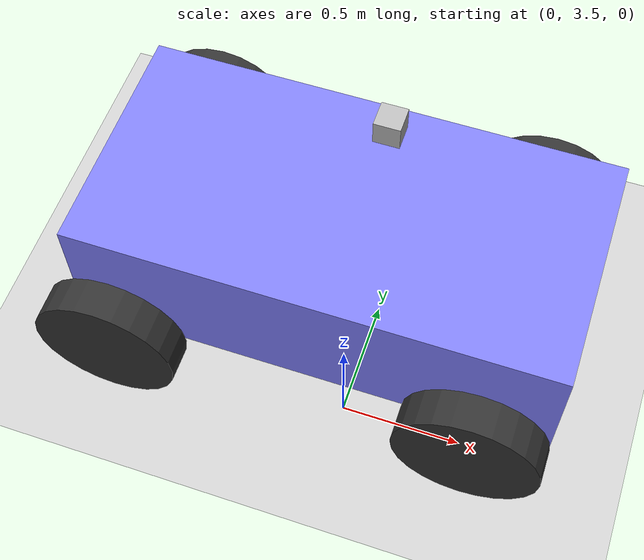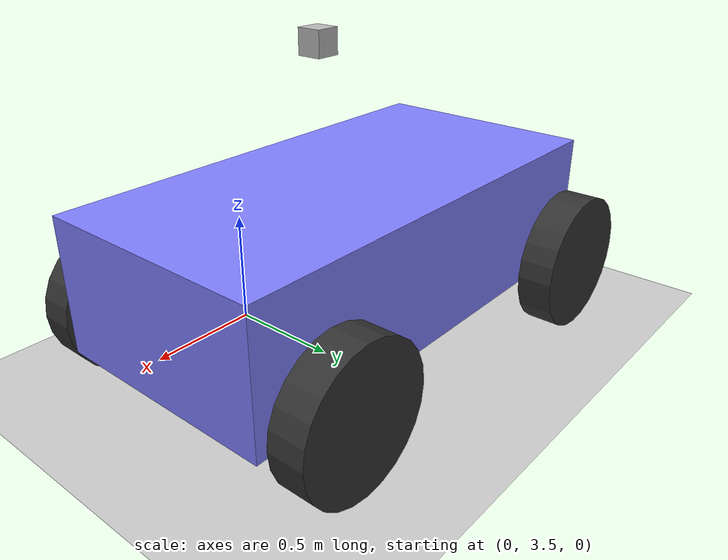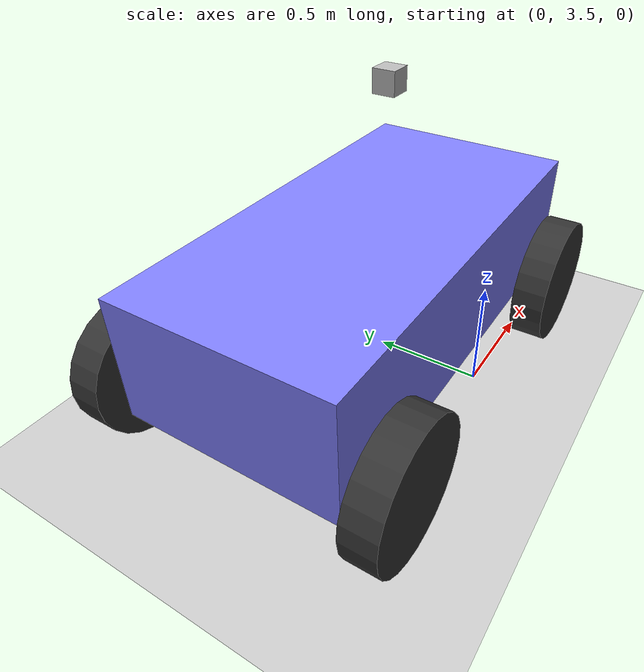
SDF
<sdf version="1.6">
 <world name="ackermann_steering">
  <physics name="1ms" type="ignored">
   <max_step_size>0.001</max_step_size>
   <real_time_factor>1.0</real_time_factor>
  </physics>
  <plugin filename="ignition-gazebo-physics-system" name="gz::sim::systems::Physics"/>
  <plugin filename="ignition-gazebo-user-commands-system" name="gz::sim::systems::UserCommands"/>
  <plugin filename="ignition-gazebo-scene-broadcaster-system" name="gz::sim::systems::SceneBroadcaster"/>
  <plugin filename="ignition-gazebo-sensors-system" name="gz::sim::systems::Sensors">
   <render_engine>ogre</render_engine>
  </plugin>
  <scene><ambient>1.0 1.0 1.0</ambient><background>0.8 0.8 0.8</background></scene>
  <light type="point" name="sun">
   <pose>0 0 5 0 0 0</pose>
   <diffuse>0.7 0.7 0.7 1</diffuse>
   <specular>0.7 0.7 0.7 1</specular>
   <attenuation>
    <range>10000</range>
    <constant>0.1</constant>
    <linear>00</linear>
    <quadratic>0.0</quadratic>
   </attenuation>
   <direction>-0.5 0.1 -0.9</direction>
  </light>
  <model name="ground_plane">
   <static>true</static>
   <link name="link">
    <collision name="collision">
     <geometry><plane><normal>0 0 1</normal><size>100 100</size></plane></geometry>
     <surface><friction><ode><mu>50</mu></ode></friction></surface>
    </collision>
    <visual name="visual">
     <geometry><plane><normal>0 0 1</normal><size>100 100</size></plane></geometry>
     <material>
      <ambient>0.8 0.8 0.8 1</ambient>
      <diffuse>0.8 0.8 0.8 1</diffuse>
      <specular>0.8 0.8 0.8 1</specular>
     </material>
    </visual>
   </link>
  </model>
  <model name="vehicle_blue">
   <pose>0 4 0.325 0 -0 0</pose>
   <link name="chassis">
    <pose>-0.151427 -0 0.175 0 -0 0</pose>
    <inertial>
     <mass>1.14395</mass>
     <inertia>
      <ixx>0.126164</ixx>
      <ixy>0</ixy>
      <ixz>0</ixz>
      <iyy>0.416519</iyy>
      <iyz>0</iyz>
      <izz>0.481014</izz>
     </inertia>
    </inertial>
    <visual name="visual">
     <geometry><box><size>2.01142 1 0.568726</size></box></geometry>
     <material>
      <ambient>0.5 0.5 1.0 1</ambient>
      <diffuse>0.5 0.5 1.0 1</diffuse>
      <specular>0.0 0.0 1.0 1</specular>
     </material>
    </visual>
    <collision name="collision"><geometry><box><size>2.01142 1 0.568726</size></box></geometry></collision>
   </link>
   <link name="camera">
    <pose>0 0 1 0 0 -1.57</pose>
    <inertial>
     <mass>0.1</mass>
     <inertia><ixx>0.000166667</ixx><iyy>0.000166667</iyy><izz>0.000166667</izz></inertia>
    </inertial>
    <collision name="collision"><geometry><box><size>0.1 0.1 0.1</size></box></geometry></collision>
    <visual name="visual"><geometry><box><size>0.1 0.1 0.1</size></box></geometry></visual>
    <sensor name="camera" type="camera">
     <camera>
      <horizontal_fov>1.047</horizontal_fov>
      <image><width>1920</width><height>1080</height><format>R8G8B8</format></image>
      <clip><near>0.1</near><far>100</far></clip>
     </camera>
     <always_on>1</always_on>
     <update_rate>10</update_rate>
     <visualize>true</visualize>
     <topic>camera</topic>
    </sensor>
   </link>
   <joint name="camera_joint" type="fixed"><parent>chassis</parent><child>camera</child></joint>
   <link name="front_left_wheel">
    <pose>0.554283 0.625029 -0.025 -1.5707 0 0</pose>
    <inertial>
     <mass>2</mass>
     <inertia><ixx>0.145833</ixx><ixy>0</ixy><ixz>0</ixz><iyy>0.145833</iyy><iyz>0</iyz><izz>0.125</izz></inertia>
    </inertial>
    <visual name="visual">
     <geometry><cylinder><length>0.15</length><radius>0.3</radius></cylinder></geometry>
     <material>
      <ambient>0.2 0.2 0.2 1</ambient>
      <diffuse>0.2 0.2 0.2 1</diffuse>
      <specular>0.2 0.2 0.2 1</specular>
     </material>
    </visual>
    <collision name="collision">
     <geometry><cylinder><length>0.15</length><radius>0.3</radius></cylinder></geometry>
     <surface><friction><ode><mu>0.5</mu><mu2>1.0</mu2><fdir1>0 0 1</fdir1></ode></friction></surface>
    </collision>
   </link>
   <link name="rear_left_wheel">
    <pose>-0.957138 0.625029 -0.025 -1.5707 0 0</pose>
    <inertial>
     <mass>2</mass>
     <inertia><ixx>0.145833</ixx><ixy>0</ixy><ixz>0</ixz><iyy>0.145833</iyy><iyz>0</iyz><izz>0.125</izz></inertia>
    </inertial>
    <visual name="visual">
     <geometry><cylinder><length>0.15</length><radius>0.3</radius></cylinder></geometry>
     <material>
      <ambient>0.2 0.2 0.2 1</ambient>
      <diffuse>0.2 0.2 0.2 1</diffuse>
      <specular>0.2 0.2 0.2 1</specular>
     </material>
    </visual>
    <collision name="collision">
     <geometry><cylinder><length>0.15</length><radius>0.3</radius></cylinder></geometry>
     <surface><friction><ode><mu>0.5</mu><mu2>1.0</mu2><fdir1>0 0 1</fdir1></ode></friction></surface>
    </collision>
   </link>
   <link name="front_right_wheel">
    <pose>0.554282 -0.625029 -0.025 -1.5707 0 0</pose>
    <inertial>
     <mass>2</mass>
     <inertia><ixx>0.145833</ixx><ixy>0</ixy><ixz>0</ixz><iyy>0.145833</iyy><iyz>0</iyz><izz>0.125</izz></inertia>
    </inertial>
    <visual name="visual">
     <geometry><cylinder><length>0.15</length><radius>0.3</radius></cylinder></geometry>
     <material>
      <ambient>0.2 0.2 0.2 1</ambient>
      <diffuse>0.2 0.2 0.2 1</diffuse>
      <specular>0.2 0.2 0.2 1</specular>
     </material>
    </visual>
    <collision name="collision">
     <geometry><cylinder><length>0.15</length><radius>0.3</radius></cylinder></geometry>
     <surface><friction><ode><mu>0.5</mu><mu2>1.0</mu2><fdir1>0 0 1</fdir1></ode></friction></surface>
    </collision>
   </link>
   <link name="rear_right_wheel">
    <pose>-0.957138 -0.625029 -0.025 -1.5707 0 0</pose>
    <inertial>
     <mass>2</mass>
     <inertia><ixx>0.145833</ixx><ixy>0</ixy><ixz>0</ixz><iyy>0.145833</iyy><iyz>0</iyz><izz>0.125</izz></inertia>
    </inertial>
    <visual name="visual">
     <geometry><cylinder><length>0.15</length><radius>0.3</radius></cylinder></geometry>
     <material>
      <ambient>0.2 0.2 0.2 1</ambient>
      <diffuse>0.2 0.2 0.2 1</diffuse>
      <specular>0.2 0.2 0.2 1</specular>
     </material>
    </visual>
    <collision name="collision">
     <geometry><cylinder><length>0.15</length><radius>0.3</radius></cylinder></geometry>
     <surface><friction><ode><mu>0.5</mu><mu2>1.0</mu2><fdir1>0 0 1</fdir1></ode></friction></surface>
    </collision>
   </link>
   <link name="front_left_wheel_steering_link">
    <pose>0.554283 0.5 0.02 0 0 0</pose>
    <inertial><mass>0.5</mass><inertia><ixx>0.0153</ixx><iyy>0.025</iyy><izz>0.0153</izz></inertia></inertial>
    <visual name="steering_link_visual">
     <geometry><cylinder><length>0.1</length><radius>0.03</radius></cylinder></geometry>
     <material><ambient>1 1 1</ambient><diffuse>1 1 1</diffuse></material>
    </visual>
   </link>
   <link name="front_right_wheel_steering_link">
    <pose>0.554283 -0.5 0.02 0 0 0</pose>
    <inertial><mass>0.5</mass><inertia><ixx>0.0153</ixx><iyy>0.025</iyy><izz>0.0153</izz></inertia></inertial>
    <visual name="steering_link_visual">
     <geometry><cylinder><length>0.1</length><radius>0.03</radius></cylinder></geometry>
     <material><ambient>1 1 1</ambient><diffuse>1 1 1</diffuse></material>
    </visual>
   </link>
   <joint name="front_left_wheel_steering_joint" type="revolute">
    <child>front_left_wheel_steering_link</child>
    <parent>chassis</parent>
    <axis>
     <xyz>0 0 1</xyz>
     <limit><lower>-0.6</lower><upper>+0.6</upper><velocity>1.0</velocity><effort>25</effort></limit>
     <use_parent_model_frame>1</use_parent_model_frame>
    </axis>
   </joint>
   <joint name="front_right_wheel_steering_joint" type="revolute">
    <parent>chassis</parent>
    <child>front_right_wheel_steering_link</child>
    <axis>
     <xyz>0 0 1</xyz>
     <limit><lower>-0.6</lower><upper>+0.6</upper><velocity>1.0</velocity><effort>25</effort></limit>
    </axis>
   </joint>
   <joint name="front_left_wheel_joint" type="revolute">
    <parent>front_left_wheel_steering_link</parent>
    <child>front_left_wheel</child>
    <axis><xyz>0 0 1</xyz><limit><lower>-1.79769e+308</lower><upper>1.79769e+308</upper></limit></axis>
   </joint>
   <joint name="front_right_wheel_joint" type="revolute">
    <parent>front_right_wheel_steering_link</parent>
    <child>front_right_wheel</child>
    <axis><xyz>0 0 1</xyz><limit><lower>-1.79769e+308</lower><upper>1.79769e+308</upper></limit></axis>
   </joint>
   <joint name="rear_left_wheel_joint" type="revolute">
    <parent>chassis</parent>
    <child>rear_left_wheel</child>
    <axis><xyz>0 0 1</xyz><limit><lower>-1.79769e+308</lower><upper>1.79769e+308</upper></limit></axis>
   </joint>
   <joint name="rear_right_wheel_joint" type="revolute">
    <parent>chassis</parent>
    <child>rear_right_wheel</child>
    <axis><xyz>0 0 1</xyz><limit><lower>-1.79769e+308</lower><upper>1.79769e+308</upper></limit></axis>
   </joint>
   <plugin filename="ignition-gazebo-ackermann-steering-system" name="gz::sim::systems::AckermannSteering">
    <left_joint>front_left_wheel_joint</left_joint>
    <left_joint>rear_left_wheel_joint</left_joint>
    <right_joint>front_right_wheel_joint</right_joint>
    <right_joint>rear_right_wheel_joint</right_joint>
    <left_steering_joint>front_left_wheel_steering_joint</left_steering_joint>
    <right_steering_joint>front_right_wheel_steering_joint</right_steering_joint>
    <kingpin_width>1.0</kingpin_width>
    <steering_limit>0.6</steering_limit>
    <wheel_base>1.0</wheel_base>
    <wheel_separation>1.25</wheel_separation>
    <wheel_radius>0.3</wheel_radius>
    <min_velocity>-10</min_velocity>
    <max_velocity>10</max_velocity>
    <min_acceleration>-6</min_acceleration>
    <max_acceleration>3</max_acceleration>
   </plugin>
   <plugin filename="libignition-gazebo6-odometry-publisher-system" name="ignition::gazebo::systems::OdometryPublisher">
    <odom_frame>camera</odom_frame>
    <robot_base_frame>camera</robot_base_frame>
    <odom_topic>odom</odom_topic>
    <tf_topic>/tf</tf_topic>
    <dimensions>2</dimensions>
    <odom_publish_frequency>10</odom_publish_frequency>
   </plugin>
  </model>
 </world>
</sdf>
